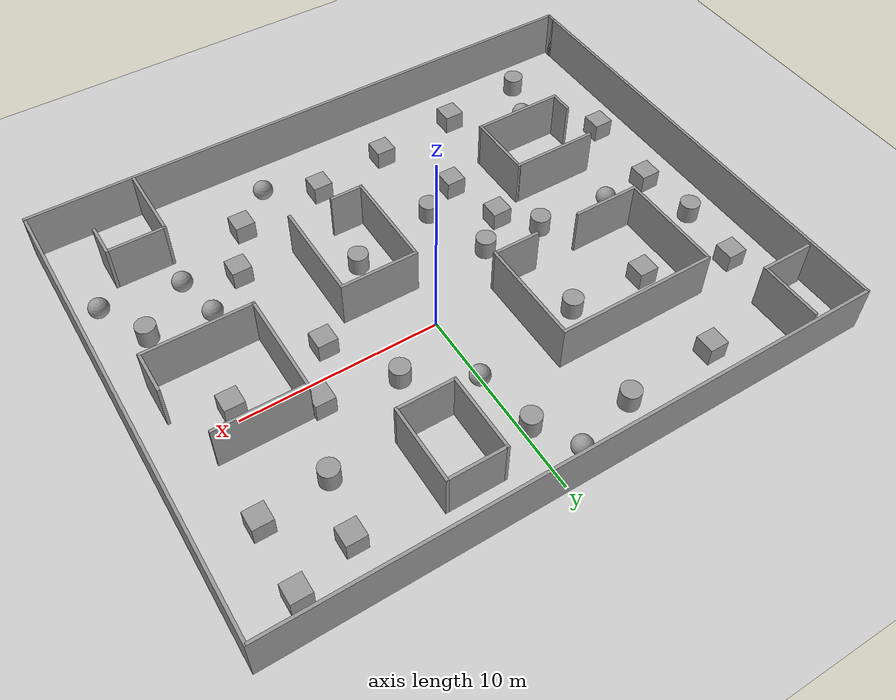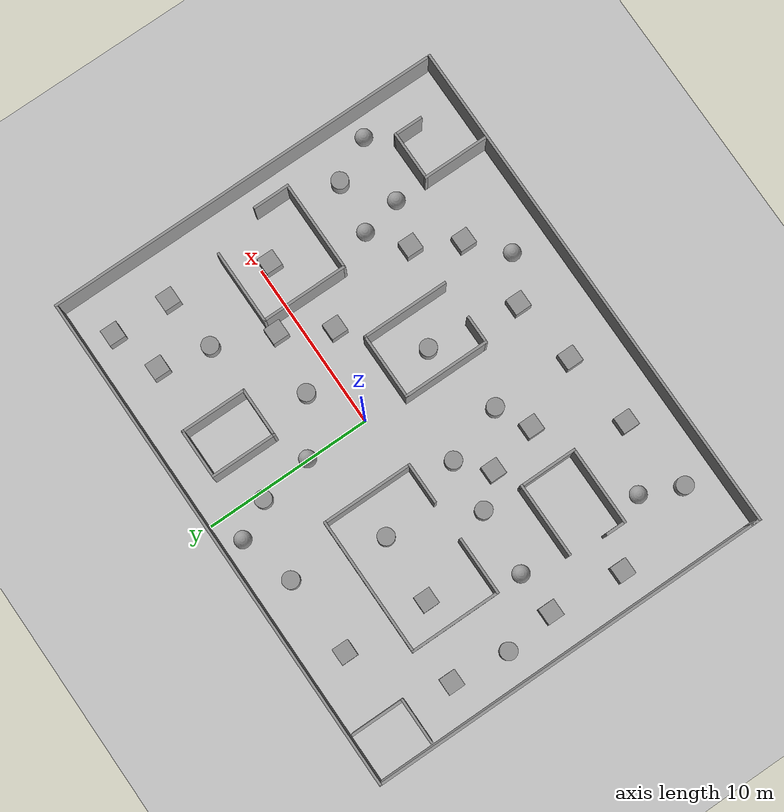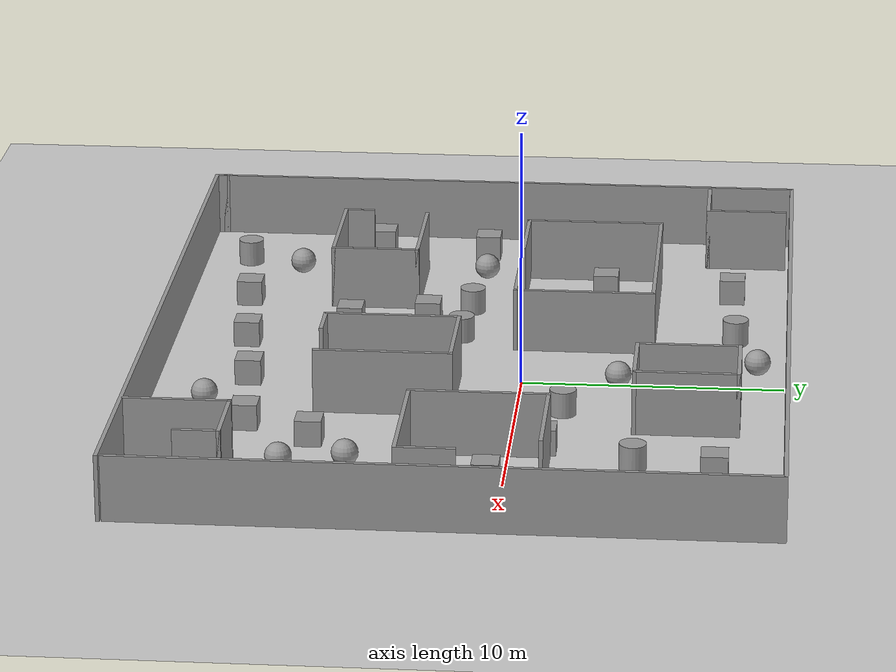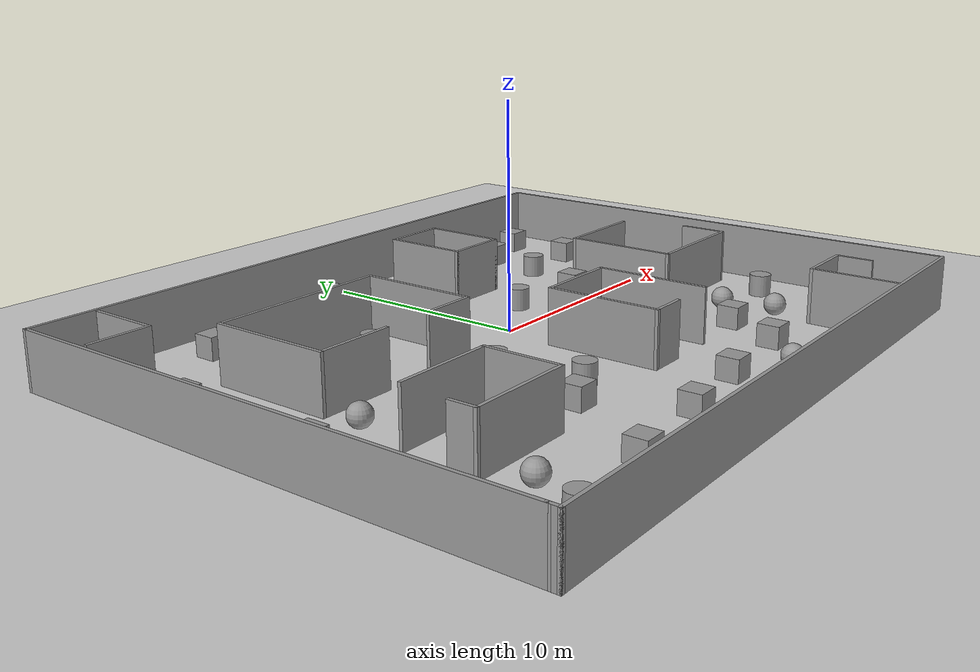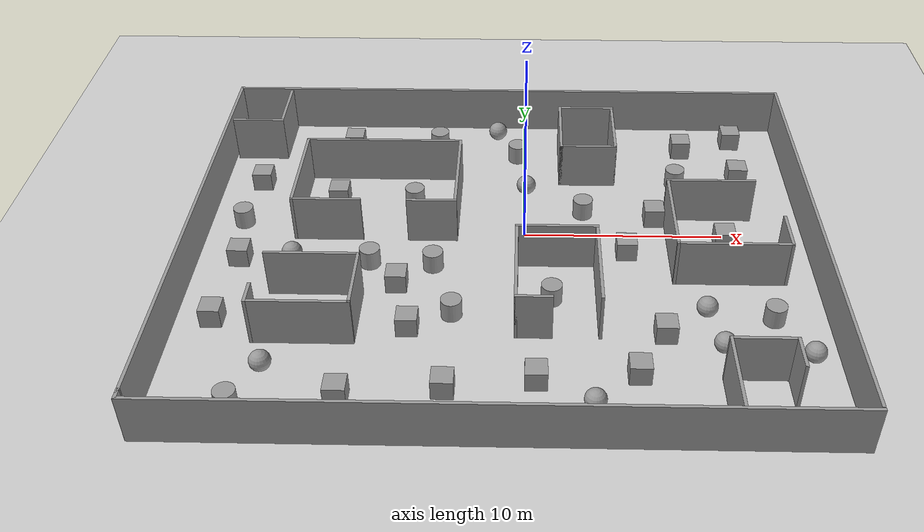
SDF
<sdf version="1.6">
 <world name="default">
  <light name="sun" type="directional">
   <pose>0 0 10 0 -0 0</pose>
   <diffuse>0.8 0.8 0.8 1</diffuse>
   <specular>0.2 0.2 0.2 1</specular>
   <attenuation>
    <range>1000</range>
    <constant>0.9</constant>
    <linear>0.01</linear>
    <quadratic>0.001</quadratic>
   </attenuation>
   <direction>-0.5 0.1 -0.9</direction>
  </light>
  <model name="ground_plane">
   <static>1</static>
   <link name="link">
    <collision name="collision">
     <geometry><plane><normal>0 0 1</normal><size>100 100</size></plane></geometry>
     <surface>
      <contact><collide_bitmask>65535</collide_bitmask></contact>
      <friction><ode><mu>100</mu><mu2>50</mu2></ode></friction>
     </surface>
    </collision>
    <visual name="visual">
     <cast_shadows>0</cast_shadows>
     <geometry><plane><normal>0 0 1</normal><size>100 100</size></plane></geometry>
     <material>
      <script><uri>file://media/materials/scripts/gazebo.material</uri><name>Gazebo/Grey</name></script>
     </material>
    </visual>
   </link>
  </model>
  <gravity>0 0 -9.8</gravity>
  <magnetic_field>6e-06 2.3e-05 -4.2e-05</magnetic_field>
  <atmosphere type="adiabatic"/>
  <physics name="default_physics" default="0" type="ode">
   <max_step_size>0.01</max_step_size>
   <real_time_factor>1</real_time_factor>
   <real_time_update_rate>100</real_time_update_rate>
  </physics>
  <scene><ambient>0.4 0.4 0.4 1</ambient><background>0.7 0.7 0.7 1</background><shadows>1</shadows></scene>
  <audio><device>default</device></audio>
  <spherical_coordinates>
   <surface_model>EARTH_WGS84</surface_model>
   <latitude_deg>0</latitude_deg>
   <longitude_deg>0</longitude_deg>
   <elevation>0</elevation>
   <heading_deg>0</heading_deg>
  </spherical_coordinates>
  <model name="uNSTRUCTED">
   <pose>-1.02886 -1.89043 0 0 -0 0</pose>
   <link name="Wall_10">
    <collision name="Wall_10_Collision">
     <geometry><box><size>0.5 0.15 2.5</size></box></geometry>
     <pose>0 0 1.25 0 -0 0</pose>
    </collision>
    <visual name="Wall_10_Visual">
     <pose>0 0 1.25 0 -0 0</pose>
     <geometry><box><size>0.5 0.15 2.5</size></box></geometry>
     <material>
      <script><uri>file://media/materials/scripts/gazebo.material</uri><name>Gazebo/Grey</name></script>
      <ambient>1 1 1 1</ambient>
     </material>
     <meta><layer>0</layer></meta>
    </visual>
    <pose>-15.175 -11.85 0 0 -0 -1.5708</pose>
   </link>
   <link name="Wall_11">
    <collision name="Wall_11_Collision">
     <geometry><box><size>30.5 0.15 2.5</size></box></geometry>
     <pose>0 0 1.25 0 -0 0</pose>
    </collision>
    <visual name="Wall_11_Visual">
     <pose>0 0 1.25 0 -0 0</pose>
     <geometry><box><size>30.5 0.15 2.5</size></box></geometry>
     <material>
      <script><uri>file://media/materials/scripts/gazebo.material</uri><name>Gazebo/Grey</name></script>
      <ambient>1 1 1 1</ambient>
     </material>
     <meta><layer>0</layer></meta>
    </visual>
    <pose>0 -12.025 0 0 -0 0</pose>
   </link>
   <link name="Wall_13">
    <collision name="Wall_13_Collision">
     <geometry><box><size>3.5 0.15 2.5</size></box></geometry>
     <pose>0 0 1.25 0 -0 0</pose>
    </collision>
    <visual name="Wall_13_Visual">
     <pose>0 0 1.25 0 -0 0</pose>
     <geometry><box><size>3.5 0.15 2.5</size></box></geometry>
     <material>
      <script><uri>file://media/materials/scripts/gazebo.material</uri><name>Gazebo/Grey</name></script>
      <ambient>1 1 1 1</ambient>
     </material>
     <meta><layer>0</layer></meta>
    </visual>
    <pose>-8.84715 1.42509 0 0 -0 3.14159</pose>
   </link>
   <link name="Wall_14">
    <collision name="Wall_14_Collision">
     <geometry><box><size>5.5 0.15 2.5</size></box></geometry>
     <pose>0 0 1.25 0 -0 0</pose>
    </collision>
    <visual name="Wall_14_Visual">
     <pose>0 0 1.25 0 -0 0</pose>
     <geometry><box><size>5.5 0.15 2.5</size></box></geometry>
     <material>
      <script><uri>file://media/materials/scripts/gazebo.material</uri><name>Gazebo/Grey</name></script>
      <ambient>1 1 1 1</ambient>
     </material>
     <meta><layer>0</layer></meta>
    </visual>
    <pose>-10.5222 4.10009 0 0 -0 1.5708</pose>
   </link>
   <link name="Wall_15">
    <collision name="Wall_15_Collision">
     <geometry><box><size>8.25 0.15 2.5</size></box></geometry>
     <pose>0 0 1.25 0 -0 0</pose>
    </collision>
    <visual name="Wall_15_Visual">
     <pose>0 0 1.25 0 -0 0</pose>
     <geometry><box><size>8.25 0.15 2.5</size></box></geometry>
     <material>
      <script><uri>file://media/materials/scripts/gazebo.material</uri><name>Gazebo/Grey</name></script>
      <ambient>1 1 1 1</ambient>
     </material>
     <meta><layer>0</layer></meta>
    </visual>
    <pose>-6.47215 6.77509 0 0 -0 0</pose>
   </link>
   <link name="Wall_16">
    <collision name="Wall_16_Collision">
     <geometry><box><size>5.5 0.15 2.5</size></box></geometry>
     <pose>0 0 1.25 0 -0 0</pose>
    </collision>
    <visual name="Wall_16_Visual">
     <pose>0 0 1.25 0 -0 0</pose>
     <geometry><box><size>5.5 0.15 2.5</size></box></geometry>
     <material>
      <script><uri>file://media/materials/scripts/gazebo.material</uri><name>Gazebo/Grey</name></script>
      <ambient>1 1 1 1</ambient>
     </material>
     <meta><layer>0</layer></meta>
    </visual>
    <pose>-2.42215 4.10009 0 0 -0 -1.5708</pose>
   </link>
   <link name="Wall_17">
    <collision name="Wall_17_Collision">
     <geometry><box><size>2.5 0.15 2.5</size></box></geometry>
     <pose>0 0 1.25 0 -0 0</pose>
    </collision>
    <visual name="Wall_17_Visual">
     <pose>0 0 1.25 0 -0 0</pose>
     <geometry><box><size>2.5 0.15 2.5</size></box></geometry>
     <material>
      <script><uri>file://media/materials/scripts/gazebo.material</uri><name>Gazebo/Grey</name></script>
      <ambient>1 1 1 1</ambient>
     </material>
     <meta><layer>0</layer></meta>
    </visual>
    <pose>-3.59715 1.42509 0 0 -0 3.14159</pose>
   </link>
   <link name="Wall_19">
    <collision name="Wall_19_Collision">
     <geometry><box><size>4 0.15 2.5</size></box></geometry>
     <pose>0 0 1.25 0 -0 0</pose>
    </collision>
    <visual name="Wall_19_Visual">
     <pose>0 0 1.25 0 -0 0</pose>
     <geometry><box><size>4 0.15 2.5</size></box></geometry>
     <material>
      <script><uri>file://media/materials/scripts/gazebo.material</uri><name>Gazebo/Grey</name></script>
      <ambient>1 1 1 1</ambient>
     </material>
     <meta><layer>0</layer></meta>
    </visual>
    <pose>2.92262 8.30571 0 0 -0 1.5708</pose>
   </link>
   <link name="Wall_20">
    <collision name="Wall_20_Collision">
     <geometry><box><size>3 0.15 2.5</size></box></geometry>
     <pose>0 0 1.25 0 -0 0</pose>
    </collision>
    <visual name="Wall_20_Visual">
     <pose>0 0 1.25 0 -0 0</pose>
     <geometry><box><size>3 0.15 2.5</size></box></geometry>
     <material>
      <script><uri>file://media/materials/scripts/gazebo.material</uri><name>Gazebo/Grey</name></script>
      <ambient>1 1 1 1</ambient>
     </material>
     <meta><layer>0</layer></meta>
    </visual>
    <pose>4.34762 10.2307 0 0 -0 0</pose>
   </link>
   <link name="Wall_21">
    <collision name="Wall_21_Collision">
     <geometry><box><size>4 0.15 2.5</size></box></geometry>
     <pose>0 0 1.25 0 -0 0</pose>
    </collision>
    <visual name="Wall_21_Visual">
     <pose>0 0 1.25 0 -0 0</pose>
     <geometry><box><size>4 0.15 2.5</size></box></geometry>
     <material>
      <script><uri>file://media/materials/scripts/gazebo.material</uri><name>Gazebo/Grey</name></script>
      <ambient>1 1 1 1</ambient>
     </material>
     <meta><layer>0</layer></meta>
    </visual>
    <pose>5.77262 8.30571 0 0 -0 -1.5708</pose>
   </link>
   <link name="Wall_23">
    <collision name="Wall_23_Collision">
     <geometry><box><size>3 0.15 2.5</size></box></geometry>
     <pose>0 0 1.25 0 -0 0</pose>
    </collision>
    <visual name="Wall_23_Visual">
     <pose>0 0 1.25 0 -0 0</pose>
     <geometry><box><size>3 0.15 2.5</size></box></geometry>
     <material>
      <script><uri>file://media/materials/scripts/gazebo.material</uri><name>Gazebo/Grey</name></script>
      <ambient>1 1 1 1</ambient>
     </material>
     <meta><layer>0</layer></meta>
    </visual>
    <pose>4.34762 6.38071 0 0 -0 0</pose>
   </link>
   <link name="Wall_25">
    <collision name="Wall_25_Collision">
     <geometry><box><size>4.5 0.15 2.5</size></box></geometry>
     <pose>0 0 1.25 0 -0 0</pose>
    </collision>
    <visual name="Wall_25_Visual">
     <pose>0 0 1.25 0 -0 0</pose>
     <geometry><box><size>4.5 0.15 2.5</size></box></geometry>
     <material>
      <script><uri>file://media/materials/scripts/gazebo.material</uri><name>Gazebo/Grey</name></script>
      <ambient>1 1 1 1</ambient>
     </material>
     <meta><layer>0</layer></meta>
    </visual>
    <pose>-8.85152 -2.79636 0 0 -0 0</pose>
   </link>
   <link name="Wall_26">
    <collision name="Wall_26_Collision">
     <geometry><box><size>3.5 0.15 2.5</size></box></geometry>
     <pose>0 0 1.25 0 -0 0</pose>
    </collision>
    <visual name="Wall_26_Visual">
     <pose>0 0 1.25 0 -0 0</pose>
     <geometry><box><size>3.5 0.15 2.5</size></box></geometry>
     <material>
      <script><uri>file://media/materials/scripts/gazebo.material</uri><name>Gazebo/Grey</name></script>
      <ambient>1 1 1 1</ambient>
     </material>
     <meta><layer>0</layer></meta>
    </visual>
    <pose>-6.67652 -4.47136 0 0 -0 -1.5708</pose>
   </link>
   <link name="Wall_27">
    <collision name="Wall_27_Collision">
     <geometry><box><size>4.75 0.15 2.5</size></box></geometry>
     <pose>0 0 1.25 0 -0 0</pose>
    </collision>
    <visual name="Wall_27_Visual">
     <pose>0 0 1.25 0 -0 0</pose>
     <geometry><box><size>4.75 0.15 2.5</size></box></geometry>
     <material>
      <script><uri>file://media/materials/scripts/gazebo.material</uri><name>Gazebo/Grey</name></script>
      <ambient>1 1 1 1</ambient>
     </material>
     <meta><layer>0</layer></meta>
    </visual>
    <pose>-8.97652 -6.14636 0 0 -0 3.14159</pose>
   </link>
   <link name="Wall_28">
    <collision name="Wall_28_Collision">
     <geometry><box><size>1.25 0.15 2.5</size></box></geometry>
     <pose>0 0 1.25 0 -0 0</pose>
    </collision>
    <visual name="Wall_28_Visual">
     <pose>0 0 1.25 0 -0 0</pose>
     <geometry><box><size>1.25 0.15 2.5</size></box></geometry>
     <material>
      <script><uri>file://media/materials/scripts/gazebo.material</uri><name>Gazebo/Grey</name></script>
      <ambient>1 1 1 1</ambient>
     </material>
     <meta><layer>0</layer></meta>
    </visual>
    <pose>-11.2765 -5.59636 0 0 -0 1.5708</pose>
   </link>
   <link name="Wall_3">
    <collision name="Wall_3_Collision">
     <geometry><box><size>30.5 0.15 2.5</size></box></geometry>
     <pose>0 0 1.25 0 -0 0</pose>
    </collision>
    <visual name="Wall_3_Visual">
     <pose>0 0 1.25 0 -0 0</pose>
     <geometry><box><size>30.5 0.15 2.5</size></box></geometry>
     <material>
      <script><uri>file://media/materials/scripts/gazebo.material</uri><name>Gazebo/Grey</name></script>
      <ambient>1 1 1 1</ambient>
     </material>
     <meta><layer>0</layer></meta>
    </visual>
    <pose>0 12.025 0 0 -0 0</pose>
   </link>
   <link name="Wall_30">
    <collision name="Wall_30_Collision">
     <geometry><box><size>2.75 0.15 2.5</size></box></geometry>
     <pose>0 0 1.25 0 -0 0</pose>
    </collision>
    <visual name="Wall_30_Visual">
     <pose>0 0 1.25 0 -0 0</pose>
     <geometry><box><size>2.75 0.15 2.5</size></box></geometry>
     <material>
      <script><uri>file://media/materials/scripts/gazebo.material</uri><name>Gazebo/Grey</name></script>
      <ambient>1 1 1 1</ambient>
     </material>
     <meta><layer>0</layer></meta>
    </visual>
    <pose>-13.5809 8.64439 0 0 -0 0</pose>
   </link>
   <link name="Wall_31">
    <collision name="Wall_31_Collision">
     <geometry><box><size>3.25 0.15 2.5</size></box></geometry>
     <pose>0 0 1.25 0 -0 0</pose>
    </collision>
    <visual name="Wall_31_Visual">
     <pose>0 0 1.25 0 -0 0</pose>
     <geometry><box><size>3.25 0.15 2.5</size></box></geometry>
     <material>
      <script><uri>file://media/materials/scripts/gazebo.material</uri><name>Gazebo/Grey</name></script>
      <ambient>1 1 1 1</ambient>
     </material>
     <meta><layer>0</layer></meta>
    </visual>
    <pose>-12.2809 10.1944 0 0 -0 1.5708</pose>
   </link>
   <link name="Wall_33">
    <collision name="Wall_33_Collision">
     <geometry><box><size>5.25 0.15 2.5</size></box></geometry>
     <pose>0 0 1.25 0 -0 0</pose>
    </collision>
    <visual name="Wall_33_Visual">
     <pose>0 0 1.25 0 -0 0</pose>
     <geometry><box><size>5.25 0.15 2.5</size></box></geometry>
     <material>
      <script><uri>file://media/materials/scripts/gazebo.material</uri><name>Gazebo/Grey</name></script>
      <ambient>1 1 1 1</ambient>
     </material>
     <meta><layer>0</layer></meta>
    </visual>
    <pose>8.24532 0.832868 0 0 -0 -1.5708</pose>
   </link>
   <link name="Wall_34">
    <collision name="Wall_34_Collision">
     <geometry><box><size>5.5 0.15 2.5</size></box></geometry>
     <pose>0 0 1.25 0 -0 0</pose>
    </collision>
    <visual name="Wall_34_Visual">
     <pose>0 0 1.25 0 -0 0</pose>
     <geometry><box><size>5.5 0.15 2.5</size></box></geometry>
     <material>
      <script><uri>file://media/materials/scripts/gazebo.material</uri><name>Gazebo/Grey</name></script>
      <ambient>1 1 1 1</ambient>
     </material>
     <meta><layer>0</layer></meta>
    </visual>
    <pose>10.9203 -1.71713 0 0 -0 0</pose>
   </link>
   <link name="Wall_35">
    <collision name="Wall_35_Collision">
     <geometry><box><size>2.25 0.15 2.5</size></box></geometry>
     <pose>0 0 1.25 0 -0 0</pose>
    </collision>
    <visual name="Wall_35_Visual">
     <pose>0 0 1.25 0 -0 0</pose>
     <geometry><box><size>2.25 0.15 2.5</size></box></geometry>
     <material>
      <script><uri>file://media/materials/scripts/gazebo.material</uri><name>Gazebo/Grey</name></script>
      <ambient>1 1 1 1</ambient>
     </material>
     <meta><layer>0</layer></meta>
    </visual>
    <pose>13.5953 -0.667132 0 0 -0 1.5708</pose>
   </link>
   <link name="Wall_37">
    <collision name="Wall_37_Collision">
     <geometry><box><size>4.5 0.15 2.5</size></box></geometry>
     <pose>0 0 1.25 0 -0 0</pose>
    </collision>
    <visual name="Wall_37_Visual">
     <pose>0 0 1.25 0 -0 0</pose>
     <geometry><box><size>4.5 0.15 2.5</size></box></geometry>
     <material>
      <script><uri>file://media/materials/scripts/gazebo.material</uri><name>Gazebo/Grey</name></script>
      <ambient>1 1 1 1</ambient>
     </material>
     <meta><layer>0</layer></meta>
    </visual>
    <pose>10.4203 3.38287 0 0 -0 0</pose>
   </link>
   <link name="Wall_39">
    <collision name="Wall_39_Collision">
     <geometry><box><size>1.75 0.15 2.5</size></box></geometry>
     <pose>0 0 1.25 0 -0 0</pose>
    </collision>
    <visual name="Wall_39_Visual">
     <pose>0 0 1.25 0 -0 0</pose>
     <geometry><box><size>1.75 0.15 2.5</size></box></geometry>
     <material>
      <script><uri>file://media/materials/scripts/gazebo.material</uri><name>Gazebo/Grey</name></script>
      <ambient>1 1 1 1</ambient>
     </material>
     <meta><layer>0</layer></meta>
    </visual>
    <pose>1.44964 -5.61066 0 0 -0 3.14159</pose>
   </link>
   <link name="Wall_4">
    <collision name="Wall_4_Collision">
     <geometry><box><size>24 0.15 2.5</size></box></geometry>
     <pose>0 0 1.25 0 -0 0</pose>
    </collision>
    <visual name="Wall_4_Visual">
     <pose>0 0 1.25 0 -0 0</pose>
     <geometry><box><size>24 0.15 2.5</size></box></geometry>
     <material>
      <script><uri>file://media/materials/scripts/gazebo.material</uri><name>Gazebo/Grey</name></script>
      <ambient>1 1 1 1</ambient>
     </material>
     <meta><layer>0</layer></meta>
    </visual>
    <pose>15.175 0.099999 0 0 -0 -1.5708</pose>
   </link>
   <link name="Wall_40">
    <collision name="Wall_40_Collision">
     <geometry><box><size>5.25 0.15 2.5</size></box></geometry>
     <pose>0 0 1.25 0 -0 0</pose>
    </collision>
    <visual name="Wall_40_Visual">
     <pose>0 0 1.25 0 -0 0</pose>
     <geometry><box><size>5.25 0.15 2.5</size></box></geometry>
     <material>
      <script><uri>file://media/materials/scripts/gazebo.material</uri><name>Gazebo/Grey</name></script>
      <ambient>1 1 1 1</ambient>
     </material>
     <meta><layer>0</layer></meta>
    </visual>
    <pose>0.649638 -3.06066 0 0 -0 1.5708</pose>
   </link>
   <link name="Wall_41">
    <collision name="Wall_41_Collision">
     <geometry><box><size>4 0.15 2.5</size></box></geometry>
     <pose>0 0 1.25 0 -0 0</pose>
    </collision>
    <visual name="Wall_41_Visual">
     <pose>0 0 1.25 0 -0 0</pose>
     <geometry><box><size>4 0.15 2.5</size></box></geometry>
     <material>
      <script><uri>file://media/materials/scripts/gazebo.material</uri><name>Gazebo/Grey</name></script>
      <ambient>1 1 1 1</ambient>
     </material>
     <meta><layer>0</layer></meta>
    </visual>
    <pose>2.57464 -0.510659 0 0 -0 0</pose>
   </link>
   <link name="Wall_42">
    <collision name="Wall_42_Collision">
     <geometry><box><size>5.25 0.15 2.5</size></box></geometry>
     <pose>0 0 1.25 0 -0 0</pose>
    </collision>
    <visual name="Wall_42_Visual">
     <pose>0 0 1.25 0 -0 0</pose>
     <geometry><box><size>5.25 0.15 2.5</size></box></geometry>
     <material>
      <script><uri>file://media/materials/scripts/gazebo.material</uri><name>Gazebo/Grey</name></script>
      <ambient>1 1 1 1</ambient>
     </material>
     <meta><layer>0</layer></meta>
    </visual>
    <pose>4.49964 -3.06066 0 0 -0 -1.5708</pose>
   </link>
   <link name="Wall_44">
    <collision name="Wall_44_Collision">
     <geometry><box><size>4 0.15 2.5</size></box></geometry>
     <pose>0 0 1.25 0 -0 0</pose>
    </collision>
    <visual name="Wall_44_Visual">
     <pose>0 0 1.25 0 -0 0</pose>
     <geometry><box><size>4 0.15 2.5</size></box></geometry>
     <material>
      <script><uri>file://media/materials/scripts/gazebo.material</uri><name>Gazebo/Grey</name></script>
      <ambient>1 1 1 1</ambient>
     </material>
     <meta><layer>0</layer></meta>
    </visual>
    <pose>9.77483 -9.98725 0 0 -0 1.5708</pose>
   </link>
   <link name="Wall_45">
    <collision name="Wall_45_Collision">
     <geometry><box><size>3 0.15 2.5</size></box></geometry>
     <pose>0 0 1.25 0 -0 0</pose>
    </collision>
    <visual name="Wall_45_Visual">
     <pose>0 0 1.25 0 -0 0</pose>
     <geometry><box><size>3 0.15 2.5</size></box></geometry>
     <material>
      <script><uri>file://media/materials/scripts/gazebo.material</uri><name>Gazebo/Grey</name></script>
      <ambient>1 1 1 1</ambient>
     </material>
     <meta><layer>0</layer></meta>
    </visual>
    <pose>11.1998 -8.06225 0 0 -0 0</pose>
   </link>
   <link name="Wall_46">
    <collision name="Wall_46_Collision">
     <geometry><box><size>1.75 0.15 2.5</size></box></geometry>
     <pose>0 0 1.25 0 -0 0</pose>
    </collision>
    <visual name="Wall_46_Visual">
     <pose>0 0 1.25 0 -0 0</pose>
     <geometry><box><size>1.75 0.15 2.5</size></box></geometry>
     <material>
      <script><uri>file://media/materials/scripts/gazebo.material</uri><name>Gazebo/Grey</name></script>
      <ambient>1 1 1 1</ambient>
     </material>
     <meta><layer>0</layer></meta>
    </visual>
    <pose>12.6248 -8.86225 0 0 -0 -1.5708</pose>
   </link>
   <link name="Wall_8">
    <collision name="Wall_8_Collision">
     <geometry><box><size>23.75 0.15 2.5</size></box></geometry>
     <pose>0 0 1.25 0 -0 0</pose>
    </collision>
    <visual name="Wall_8_Visual">
     <pose>0 0 1.25 0 -0 0</pose>
     <geometry><box><size>23.75 0.15 2.5</size></box></geometry>
     <material>
      <script><uri>file://media/materials/scripts/gazebo.material</uri><name>Gazebo/Grey</name></script>
      <ambient>1 1 1 1</ambient>
     </material>
     <meta><layer>0</layer></meta>
    </visual>
    <pose>-15.175 0.224999 0 0 -0 -1.5708</pose>
   </link>
   <link name="Wall_9">
    <collision name="Wall_9_Collision">
     <geometry><box><size>0.25 0.15 2.5</size></box></geometry>
     <pose>0 0 1.25 0 -0 0</pose>
    </collision>
    <visual name="Wall_9_Visual">
     <pose>0 0 1.25 0 -0 0</pose>
     <geometry><box><size>0.25 0.15 2.5</size></box></geometry>
     <material>
      <script><uri>file://media/materials/scripts/gazebo.material</uri><name>Gazebo/Grey</name></script>
      <ambient>1 1 1 1</ambient>
     </material>
     <meta><layer>0</layer></meta>
    </visual>
    <pose>-15.175 -11.625 0 0 -0 -1.5708</pose>
   </link>
   <static>1</static>
  </model>
  <model name="unit_box">
   <pose>-9.74154 2.76926 0.499995 -1e-05 -0 -0</pose>
   <link name="link">
    <inertial>
     <mass>1</mass>
     <inertia>
      <ixx>0.166667</ixx>
      <ixy>0</ixy>
      <ixz>0</ixz>
      <iyy>0.166667</iyy>
      <iyz>0</iyz>
      <izz>0.166667</izz>
     </inertia>
    </inertial>
    <collision name="collision"><geometry><box><size>1 1 1</size></box></geometry></collision>
    <visual name="visual">
     <geometry><box><size>1 1 1</size></box></geometry>
     <material>
      <script><name>Gazebo/Grey</name><uri>file://media/materials/scripts/gazebo.material</uri></script>
     </material>
    </visual>
   </link>
  </model>
  <model name="unit_cylinder">
   <pose>-5.7688 2.62211 0.499997 4e-06 3e-06 -0</pose>
   <link name="link">
    <inertial>
     <mass>1</mass>
     <inertia><ixx>0.145833</ixx><ixy>0</ixy><ixz>0</ixz><iyy>0.145833</iyy><iyz>0</iyz><izz>0.125</izz></inertia>
    </inertial>
    <collision name="collision">
     <geometry><cylinder><radius>0.5</radius><length>1</length></cylinder></geometry>
    </collision>
    <visual name="visual">
     <geometry><cylinder><radius>0.5</radius><length>1</length></cylinder></geometry>
     <material>
      <script><name>Gazebo/Grey</name><uri>file://media/materials/scripts/gazebo.material</uri></script>
     </material>
    </visual>
   </link>
  </model>
  <model name="unit_box_0">
   <pose>-14.0333 4.10663 0.499995 -1e-05 -0 -0</pose>
   <link name="link">
    <inertial>
     <mass>1</mass>
     <inertia>
      <ixx>0.166667</ixx>
      <ixy>0</ixy>
      <ixz>0</ixz>
      <iyy>0.166667</iyy>
      <iyz>0</iyz>
      <izz>0.166667</izz>
     </inertia>
    </inertial>
    <collision name="collision"><geometry><box><size>1 1 1</size></box></geometry></collision>
    <visual name="visual">
     <geometry><box><size>1 1 1</size></box></geometry>
     <material>
      <script><name>Gazebo/Grey</name><uri>file://media/materials/scripts/gazebo.material</uri></script>
     </material>
    </visual>
   </link>
  </model>
  <model name="unit_cylinder_0">
   <pose>-14.3994 0.724442 0.499994 -4e-06 -3e-06 -0</pose>
   <link name="link">
    <inertial>
     <mass>1</mass>
     <inertia><ixx>0.145833</ixx><ixy>0</ixy><ixz>0</ixz><iyy>0.145833</iyy><iyz>0</iyz><izz>0.125</izz></inertia>
    </inertial>
    <collision name="collision">
     <geometry><cylinder><radius>0.5</radius><length>1</length></cylinder></geometry>
    </collision>
    <visual name="visual">
     <geometry><cylinder><radius>0.5</radius><length>1</length></cylinder></geometry>
     <material>
      <script><name>Gazebo/Grey</name><uri>file://media/materials/scripts/gazebo.material</uri></script>
     </material>
    </visual>
   </link>
  </model>
  <model name="unit_box_1">
   <pose>-13.9883 -2.29121 0.499995 -1e-05 -0 -0</pose>
   <link name="link">
    <inertial>
     <mass>1</mass>
     <inertia>
      <ixx>0.166667</ixx>
      <ixy>0</ixy>
      <ixz>0</ixz>
      <iyy>0.166667</iyy>
      <iyz>0</iyz>
      <izz>0.166667</izz>
     </inertia>
    </inertial>
    <collision name="collision"><geometry><box><size>1 1 1</size></box></geometry></collision>
    <visual name="visual">
     <geometry><box><size>1 1 1</size></box></geometry>
     <material>
      <script><name>Gazebo/Grey</name><uri>file://media/materials/scripts/gazebo.material</uri></script>
     </material>
    </visual>
   </link>
  </model>
  <model name="unit_sphere">
   <pose>-11.4334 -2.16065 0.5 0 -0 0</pose>
   <link name="link">
    <inertial>
     <mass>1</mass>
     <inertia><ixx>0.1</ixx><ixy>0</ixy><ixz>0</ixz><iyy>0.1</iyy><iyz>0</iyz><izz>0.1</izz></inertia>
    </inertial>
    <collision name="collision"><geometry><sphere><radius>0.5</radius></sphere></geometry></collision>
    <visual name="visual">
     <geometry><sphere><radius>0.5</radius></sphere></geometry>
     <material>
      <script><name>Gazebo/Grey</name><uri>file://media/materials/scripts/gazebo.material</uri></script>
     </material>
    </visual>
   </link>
  </model>
  <model name="unit_cylinder_1">
   <pose>-7.55518 -2.44463 0.499994 -4e-06 -4e-06 -0</pose>
   <link name="link">
    <inertial>
     <mass>1</mass>
     <inertia><ixx>0.145833</ixx><ixy>0</ixy><ixz>0</ixz><iyy>0.145833</iyy><iyz>0</iyz><izz>0.125</izz></inertia>
    </inertial>
    <collision name="collision">
     <geometry><cylinder><radius>0.5</radius><length>1</length></cylinder></geometry>
    </collision>
    <visual name="visual">
     <geometry><cylinder><radius>0.5</radius><length>1</length></cylinder></geometry>
     <material>
      <script><name>Gazebo/Grey</name><uri>file://media/materials/scripts/gazebo.material</uri></script>
     </material>
    </visual>
   </link>
  </model>
  <model name="unit_cylinder_2">
   <pose>-4.8017 8.06403 0.499997 4e-06 4e-06 -0</pose>
   <link name="link">
    <inertial>
     <mass>1</mass>
     <inertia><ixx>0.145833</ixx><ixy>0</ixy><ixz>0</ixz><iyy>0.145833</iyy><iyz>0</iyz><izz>0.125</izz></inertia>
    </inertial>
    <collision name="collision">
     <geometry><cylinder><radius>0.5</radius><length>1</length></cylinder></geometry>
    </collision>
    <visual name="visual">
     <geometry><cylinder><radius>0.5</radius><length>1</length></cylinder></geometry>
     <material>
      <script><name>Gazebo/Grey</name><uri>file://media/materials/scripts/gazebo.material</uri></script>
     </material>
    </visual>
   </link>
  </model>
  <model name="unit_box_2">
   <pose>-9.55526 7.84792 0.499995 -1e-05 -0 -0</pose>
   <link name="link">
    <inertial>
     <mass>1</mass>
     <inertia>
      <ixx>0.166667</ixx>
      <ixy>0</ixy>
      <ixz>0</ixz>
      <iyy>0.166667</iyy>
      <iyz>0</iyz>
      <izz>0.166667</izz>
     </inertia>
    </inertial>
    <collision name="collision"><geometry><box><size>1 1 1</size></box></geometry></collision>
    <visual name="visual">
     <geometry><box><size>1 1 1</size></box></geometry>
     <material>
      <script><name>Gazebo/Grey</name><uri>file://media/materials/scripts/gazebo.material</uri></script>
     </material>
    </visual>
   </link>
  </model>
  <model name="unit_cylinder_3">
   <pose>-0.41743 6.86262 0.499998 3e-06 4e-06 -0</pose>
   <link name="link">
    <inertial>
     <mass>1</mass>
     <inertia><ixx>0.145833</ixx><ixy>0</ixy><ixz>0</ixz><iyy>0.145833</iyy><iyz>0</iyz><izz>0.125</izz></inertia>
    </inertial>
    <collision name="collision">
     <geometry><cylinder><radius>0.5</radius><length>1</length></cylinder></geometry>
    </collision>
    <visual name="visual">
     <geometry><cylinder><radius>0.5</radius><length>1</length></cylinder></geometry>
     <material>
      <script><name>Gazebo/Grey</name><uri>file://media/materials/scripts/gazebo.material</uri></script>
     </material>
    </visual>
   </link>
  </model>
  <model name="unit_sphere_0">
   <pose>-1.55556 8.97205 0.5 0 -0 0</pose>
   <link name="link">
    <inertial>
     <mass>1</mass>
     <inertia><ixx>0.1</ixx><ixy>0</ixy><ixz>0</ixz><iyy>0.1</iyy><iyz>0</iyz><izz>0.1</izz></inertia>
    </inertial>
    <collision name="collision"><geometry><sphere><radius>0.5</radius></sphere></geometry></collision>
    <visual name="visual">
     <geometry><sphere><radius>0.5</radius></sphere></geometry>
     <material>
      <script><name>Gazebo/Grey</name><uri>file://media/materials/scripts/gazebo.material</uri></script>
     </material>
    </visual>
   </link>
  </model>
  <model name="unit_box_3">
   <pose>11.5154 8.52555 0.499995 0 1e-05 0</pose>
   <link name="link">
    <inertial>
     <mass>1</mass>
     <inertia>
      <ixx>0.166667</ixx>
      <ixy>0</ixy>
      <ixz>0</ixz>
      <iyy>0.166667</iyy>
      <iyz>0</iyz>
      <izz>0.166667</izz>
     </inertia>
    </inertial>
    <collision name="collision"><geometry><box><size>1 1 1</size></box></geometry></collision>
    <visual name="visual">
     <geometry><box><size>1 1 1</size></box></geometry>
     <material>
      <script><name>Gazebo/Grey</name><uri>file://media/materials/scripts/gazebo.material</uri></script>
     </material>
    </visual>
   </link>
  </model>
  <model name="unit_box_4">
   <pose>8.63246 7.5713 0.499995 -1e-05 -0 -0</pose>
   <link name="link">
    <inertial>
     <mass>1</mass>
     <inertia>
      <ixx>0.166667</ixx>
      <ixy>0</ixy>
      <ixz>0</ixz>
      <iyy>0.166667</iyy>
      <iyz>0</iyz>
      <izz>0.166667</izz>
     </inertia>
    </inertial>
    <collision name="collision"><geometry><box><size>1 1 1</size></box></geometry></collision>
    <visual name="visual">
     <geometry><box><size>1 1 1</size></box></geometry>
     <material>
      <script><name>Gazebo/Grey</name><uri>file://media/materials/scripts/gazebo.material</uri></script>
     </material>
    </visual>
   </link>
  </model>
  <model name="unit_box_5">
   <pose>11.411 5.04689 0.499995 0 1e-05 0</pose>
   <link name="link">
    <inertial>
     <mass>1</mass>
     <inertia>
      <ixx>0.166667</ixx>
      <ixy>0</ixy>
      <ixz>0</ixz>
      <iyy>0.166667</iyy>
      <iyz>0</iyz>
      <izz>0.166667</izz>
     </inertia>
    </inertial>
    <collision name="collision"><geometry><box><size>1 1 1</size></box></geometry></collision>
    <visual name="visual">
     <geometry><box><size>1 1 1</size></box></geometry>
     <material>
      <script><name>Gazebo/Grey</name><uri>file://media/materials/scripts/gazebo.material</uri></script>
     </material>
    </visual>
   </link>
  </model>
  <model name="unit_cylinder_4">
   <pose>8.02868 4.59757 0.499998 3e-06 -2e-06 0</pose>
   <link name="link">
    <inertial>
     <mass>1</mass>
     <inertia><ixx>0.145833</ixx><ixy>0</ixy><ixz>0</ixz><iyy>0.145833</iyy><iyz>0</iyz><izz>0.125</izz></inertia>
    </inertial>
    <collision name="collision">
     <geometry><cylinder><radius>0.5</radius><length>1</length></cylinder></geometry>
    </collision>
    <visual name="visual">
     <geometry><cylinder><radius>0.5</radius><length>1</length></cylinder></geometry>
     <material>
      <script><name>Gazebo/Grey</name><uri>file://media/materials/scripts/gazebo.material</uri></script>
     </material>
    </visual>
   </link>
  </model>
  <model name="unit_cylinder_5">
   <pose>2.99729 1.77576 0.499992 -3e-06 2e-06 0</pose>
   <link name="link">
    <inertial>
     <mass>1</mass>
     <inertia><ixx>0.145833</ixx><ixy>0</ixy><ixz>0</ixz><iyy>0.145833</iyy><iyz>0</iyz><izz>0.125</izz></inertia>
    </inertial>
    <collision name="collision">
     <geometry><cylinder><radius>0.5</radius><length>1</length></cylinder></geometry>
    </collision>
    <visual name="visual">
     <geometry><cylinder><radius>0.5</radius><length>1</length></cylinder></geometry>
     <material>
      <script><name>Gazebo/Grey</name><uri>file://media/materials/scripts/gazebo.material</uri></script>
     </material>
    </visual>
   </link>
  </model>
  <model name="unit_box_6">
   <pose>5.04259 -1.47327 0.499995 -1e-05 -0 -0</pose>
   <link name="link">
    <inertial>
     <mass>1</mass>
     <inertia>
      <ixx>0.166667</ixx>
      <ixy>0</ixy>
      <ixz>0</ixz>
      <iyy>0.166667</iyy>
      <iyz>0</iyz>
      <izz>0.166667</izz>
     </inertia>
    </inertial>
    <collision name="collision"><geometry><box><size>1 1 1</size></box></geometry></collision>
    <visual name="visual">
     <geometry><box><size>1 1 1</size></box></geometry>
     <material>
      <script><name>Gazebo/Grey</name><uri>file://media/materials/scripts/gazebo.material</uri></script>
     </material>
    </visual>
   </link>
  </model>
  <model name="unit_cylinder_6">
   <pose>-4.4524 -2.63524 0.499992 -3e-06 2e-06 0</pose>
   <link name="link">
    <inertial>
     <mass>1</mass>
     <inertia><ixx>0.145833</ixx><ixy>0</ixy><ixz>0</ixz><iyy>0.145833</iyy><iyz>0</iyz><izz>0.125</izz></inertia>
    </inertial>
    <collision name="collision">
     <geometry><cylinder><radius>0.5</radius><length>1</length></cylinder></geometry>
    </collision>
    <visual name="visual">
     <geometry><cylinder><radius>0.5</radius><length>1</length></cylinder></geometry>
     <material>
      <script><name>Gazebo/Grey</name><uri>file://media/materials/scripts/gazebo.material</uri></script>
     </material>
    </visual>
   </link>
  </model>
  <model name="unit_box_7">
   <pose>-6.09666 -4.09185 0.499995 -1e-05 -0 -0</pose>
   <link name="link">
    <inertial>
     <mass>1</mass>
     <inertia>
      <ixx>0.166667</ixx>
      <ixy>0</ixy>
      <ixz>0</ixz>
      <iyy>0.166667</iyy>
      <iyz>0</iyz>
      <izz>0.166667</izz>
     </inertia>
    </inertial>
    <collision name="collision"><geometry><box><size>1 1 1</size></box></geometry></collision>
    <visual name="visual">
     <geometry><box><size>1 1 1</size></box></geometry>
     <material>
      <script><name>Gazebo/Grey</name><uri>file://media/materials/scripts/gazebo.material</uri></script>
     </material>
    </visual>
   </link>
  </model>
  <model name="unit_cylinder_7">
   <pose>-3.3623 -6.10618 0.499993 -3e-06 2e-06 0</pose>
   <link name="link">
    <inertial>
     <mass>1</mass>
     <inertia><ixx>0.145833</ixx><ixy>0</ixy><ixz>0</ixz><iyy>0.145833</iyy><iyz>0</iyz><izz>0.125</izz></inertia>
    </inertial>
    <collision name="collision">
     <geometry><cylinder><radius>0.5</radius><length>1</length></cylinder></geometry>
    </collision>
    <visual name="visual">
     <geometry><cylinder><radius>0.5</radius><length>1</length></cylinder></geometry>
     <material>
      <script><name>Gazebo/Grey</name><uri>file://media/materials/scripts/gazebo.material</uri></script>
     </material>
    </visual>
   </link>
  </model>
  <model name="unit_box_8">
   <pose>-5.32456 -7.1041 0.499995 -1e-05 -0 -0</pose>
   <link name="link">
    <inertial>
     <mass>1</mass>
     <inertia>
      <ixx>0.166667</ixx>
      <ixy>0</ixy>
      <ixz>0</ixz>
      <iyy>0.166667</iyy>
      <iyz>0</iyz>
      <izz>0.166667</izz>
     </inertia>
    </inertial>
    <collision name="collision"><geometry><box><size>1 1 1</size></box></geometry></collision>
    <visual name="visual">
     <geometry><box><size>1 1 1</size></box></geometry>
     <material>
      <script><name>Gazebo/Grey</name><uri>file://media/materials/scripts/gazebo.material</uri></script>
     </material>
    </visual>
   </link>
  </model>
  <model name="unit_cylinder_8">
   <pose>1.29227 -4.97813 0.499993 -3e-06 2e-06 0</pose>
   <link name="link">
    <inertial>
     <mass>1</mass>
     <inertia><ixx>0.145833</ixx><ixy>0</ixy><ixz>0</ixz><iyy>0.145833</iyy><iyz>0</iyz><izz>0.125</izz></inertia>
    </inertial>
    <collision name="collision">
     <geometry><cylinder><radius>0.5</radius><length>1</length></cylinder></geometry>
    </collision>
    <visual name="visual">
     <geometry><cylinder><radius>0.5</radius><length>1</length></cylinder></geometry>
     <material>
      <script><name>Gazebo/Grey</name><uri>file://media/materials/scripts/gazebo.material</uri></script>
     </material>
    </visual>
   </link>
  </model>
  <model name="unit_box_9">
   <pose>-14.3547 -6.67054 0.499995 -1e-05 -0 -0</pose>
   <link name="link">
    <inertial>
     <mass>1</mass>
     <inertia>
      <ixx>0.166667</ixx>
      <ixy>0</ixy>
      <ixz>0</ixz>
      <iyy>0.166667</iyy>
      <iyz>0</iyz>
      <izz>0.166667</izz>
     </inertia>
    </inertial>
    <collision name="collision"><geometry><box><size>1 1 1</size></box></geometry></collision>
    <visual name="visual">
     <geometry><box><size>1 1 1</size></box></geometry>
     <material>
      <script><name>Gazebo/Grey</name><uri>file://media/materials/scripts/gazebo.material</uri></script>
     </material>
    </visual>
   </link>
  </model>
  <model name="unit_sphere_1">
   <pose>-11.527 -9.73126 0.5 0 -0 0</pose>
   <link name="link">
    <inertial>
     <mass>1</mass>
     <inertia><ixx>0.1</ixx><ixy>0</ixy><ixz>0</ixz><iyy>0.1</iyy><iyz>0</iyz><izz>0.1</izz></inertia>
    </inertial>
    <collision name="collision"><geometry><sphere><radius>0.5</radius></sphere></geometry></collision>
    <visual name="visual">
     <geometry><sphere><radius>0.5</radius></sphere></geometry>
     <material>
      <script><name>Gazebo/Grey</name><uri>file://media/materials/scripts/gazebo.material</uri></script>
     </material>
    </visual>
   </link>
  </model>
  <model name="unit_box_10">
   <pose>-3.4616 -10.9369 0.499995 -1e-05 -0 -0</pose>
   <link name="link">
    <inertial>
     <mass>1</mass>
     <inertia>
      <ixx>0.166667</ixx>
      <ixy>0</ixy>
      <ixz>0</ixz>
      <iyy>0.166667</iyy>
      <iyz>0</iyz>
      <izz>0.166667</izz>
     </inertia>
    </inertial>
    <collision name="collision"><geometry><box><size>1 1 1</size></box></geometry></collision>
    <visual name="visual">
     <geometry><box><size>1 1 1</size></box></geometry>
     <material>
      <script><name>Gazebo/Grey</name><uri>file://media/materials/scripts/gazebo.material</uri></script>
     </material>
    </visual>
   </link>
  </model>
  <model name="unit_cylinder_9">
   <pose>-12.5314 -12.0061 0.499992 -3e-06 3e-06 0</pose>
   <link name="link">
    <inertial>
     <mass>1</mass>
     <inertia><ixx>0.145833</ixx><ixy>0</ixy><ixz>0</ixz><iyy>0.145833</iyy><iyz>0</iyz><izz>0.125</izz></inertia>
    </inertial>
    <collision name="collision">
     <geometry><cylinder><radius>0.5</radius><length>1</length></cylinder></geometry>
    </collision>
    <visual name="visual">
     <geometry><cylinder><radius>0.5</radius><length>1</length></cylinder></geometry>
     <material>
      <script><name>Gazebo/Grey</name><uri>file://media/materials/scripts/gazebo.material</uri></script>
     </material>
    </visual>
   </link>
  </model>
  <model name="unit_box_11">
   <pose>-7.97333 -11.4258 0.499995 -1e-05 -0 -0</pose>
   <link name="link">
    <inertial>
     <mass>1</mass>
     <inertia>
      <ixx>0.166667</ixx>
      <ixy>0</ixy>
      <ixz>0</ixz>
      <iyy>0.166667</iyy>
      <iyz>0</iyz>
      <izz>0.166667</izz>
     </inertia>
    </inertial>
    <collision name="collision"><geometry><box><size>1 1 1</size></box></geometry></collision>
    <visual name="visual">
     <geometry><box><size>1 1 1</size></box></geometry>
     <material>
      <script><name>Gazebo/Grey</name><uri>file://media/materials/scripts/gazebo.material</uri></script>
     </material>
    </visual>
   </link>
  </model>
  <model name="unit_sphere_2">
   <pose>8.49666 -5.81807 0.5 0 -0 0</pose>
   <link name="link">
    <inertial>
     <mass>1</mass>
     <inertia><ixx>0.1</ixx><ixy>0</ixy><ixz>0</ixz><iyy>0.1</iyy><iyz>0</iyz><izz>0.1</izz></inertia>
    </inertial>
    <collision name="collision"><geometry><sphere><radius>0.5</radius></sphere></geometry></collision>
    <visual name="visual">
     <geometry><sphere><radius>0.5</radius></sphere></geometry>
     <material>
      <script><name>Gazebo/Grey</name><uri>file://media/materials/scripts/gazebo.material</uri></script>
     </material>
    </visual>
   </link>
  </model>
  <model name="unit_box_12">
   <pose>6.43934 -7.36285 0.499995 -1e-05 -0 -0</pose>
   <link name="link">
    <inertial>
     <mass>1</mass>
     <inertia>
      <ixx>0.166667</ixx>
      <ixy>0</ixy>
      <ixz>0</ixz>
      <iyy>0.166667</iyy>
      <iyz>0</iyz>
      <izz>0.166667</izz>
     </inertia>
    </inertial>
    <collision name="collision"><geometry><box><size>1 1 1</size></box></geometry></collision>
    <visual name="visual">
     <geometry><box><size>1 1 1</size></box></geometry>
     <material>
      <script><name>Gazebo/Grey</name><uri>file://media/materials/scripts/gazebo.material</uri></script>
     </material>
    </visual>
   </link>
  </model>
  <model name="unit_cylinder_10">
   <pose>11.5509 -6.23641 0.499992 -3e-06 3e-06 0</pose>
   <link name="link">
    <inertial>
     <mass>1</mass>
     <inertia><ixx>0.145833</ixx><ixy>0</ixy><ixz>0</ixz><iyy>0.145833</iyy><iyz>0</iyz><izz>0.125</izz></inertia>
    </inertial>
    <collision name="collision">
     <geometry><cylinder><radius>0.5</radius><length>1</length></cylinder></geometry>
    </collision>
    <visual name="visual">
     <geometry><cylinder><radius>0.5</radius><length>1</length></cylinder></geometry>
     <material>
      <script><name>Gazebo/Grey</name><uri>file://media/materials/scripts/gazebo.material</uri></script>
     </material>
    </visual>
   </link>
  </model>
  <model name="unit_sphere_3">
   <pose>8.99025 -8.18993 0.5 0 -0 0</pose>
   <link name="link">
    <inertial>
     <mass>1</mass>
     <inertia><ixx>0.1</ixx><ixy>0</ixy><ixz>0</ixz><iyy>0.1</iyy><iyz>0</iyz><izz>0.1</izz></inertia>
    </inertial>
    <collision name="collision"><geometry><sphere><radius>0.5</radius></sphere></geometry></collision>
    <visual name="visual">
     <geometry><sphere><radius>0.5</radius></sphere></geometry>
     <material>
      <script><name>Gazebo/Grey</name><uri>file://media/materials/scripts/gazebo.material</uri></script>
     </material>
    </visual>
   </link>
  </model>
  <model name="unit_box_13">
   <pose>5.0641 -9.9116 0.499995 0 1e-05 0</pose>
   <link name="link">
    <inertial>
     <mass>1</mass>
     <inertia>
      <ixx>0.166667</ixx>
      <ixy>0</ixy>
      <ixz>0</ixz>
      <iyy>0.166667</iyy>
      <iyz>0</iyz>
      <izz>0.166667</izz>
     </inertia>
    </inertial>
    <collision name="collision"><geometry><box><size>1 1 1</size></box></geometry></collision>
    <visual name="visual">
     <geometry><box><size>1 1 1</size></box></geometry>
     <material>
      <script><name>Gazebo/Grey</name><uri>file://media/materials/scripts/gazebo.material</uri></script>
     </material>
    </visual>
   </link>
  </model>
  <model name="unit_box_14">
   <pose>0.550465 -10.3554 0.499995 -1e-05 -0 -0</pose>
   <link name="link">
    <inertial>
     <mass>1</mass>
     <inertia>
      <ixx>0.166667</ixx>
      <ixy>0</ixy>
      <ixz>0</ixz>
      <iyy>0.166667</iyy>
      <iyz>0</iyz>
      <izz>0.166667</izz>
     </inertia>
    </inertial>
    <collision name="collision"><geometry><box><size>1 1 1</size></box></geometry></collision>
    <visual name="visual">
     <geometry><box><size>1 1 1</size></box></geometry>
     <material>
      <script><name>Gazebo/Grey</name><uri>file://media/materials/scripts/gazebo.material</uri></script>
     </material>
    </visual>
   </link>
  </model>
  <model name="unit_sphere_4">
   <pose>3.05395 -11.7279 0.5 0 -0 0</pose>
   <link name="link">
    <inertial>
     <mass>1</mass>
     <inertia><ixx>0.1</ixx><ixy>0</ixy><ixz>0</ixz><iyy>0.1</iyy><iyz>0</iyz><izz>0.1</izz></inertia>
    </inertial>
    <collision name="collision"><geometry><sphere><radius>0.5</radius></sphere></geometry></collision>
    <visual name="visual">
     <geometry><sphere><radius>0.5</radius></sphere></geometry>
     <material>
      <script><name>Gazebo/Grey</name><uri>file://media/materials/scripts/gazebo.material</uri></script>
     </material>
    </visual>
   </link>
  </model>
  <model name="unit_sphere_5">
   <pose>0.068756 3.71069 0.5 0 -0 0</pose>
   <link name="link">
    <inertial>
     <mass>1</mass>
     <inertia><ixx>0.1</ixx><ixy>0</ixy><ixz>0</ixz><iyy>0.1</iyy><iyz>0</iyz><izz>0.1</izz></inertia>
    </inertial>
    <collision name="collision"><geometry><sphere><radius>0.5</radius></sphere></geometry></collision>
    <visual name="visual">
     <geometry><sphere><radius>0.5</radius></sphere></geometry>
     <material>
      <script><name>Gazebo/Grey</name><uri>file://media/materials/scripts/gazebo.material</uri></script>
     </material>
    </visual>
   </link>
  </model>
  <model name="unit_box_15">
   <pose>9.98696 -0.586005 0.499995 0 1e-05 0</pose>
   <link name="link">
    <inertial>
     <mass>1</mass>
     <inertia>
      <ixx>0.166667</ixx>
      <ixy>0</ixy>
      <ixz>0</ixz>
      <iyy>0.166667</iyy>
      <iyz>0</iyz>
      <izz>0.166667</izz>
     </inertia>
    </inertial>
    <collision name="collision"><geometry><box><size>1 1 1</size></box></geometry></collision>
    <visual name="visual">
     <geometry><box><size>1 1 1</size></box></geometry>
     <material>
      <script><name>Gazebo/Grey</name><uri>file://media/materials/scripts/gazebo.material</uri></script>
     </material>
    </visual>
   </link>
  </model>
  <model name="unit_sphere_6">
   <pose>12.8947 -8.7245 0.5 0 -0 0</pose>
   <link name="link">
    <inertial>
     <mass>1</mass>
     <inertia><ixx>0.1</ixx><ixy>0</ixy><ixz>0</ixz><iyy>0.1</iyy><iyz>0</iyz><izz>0.1</izz></inertia>
    </inertial>
    <collision name="collision"><geometry><sphere><radius>0.5</radius></sphere></geometry></collision>
    <visual name="visual">
     <geometry><sphere><radius>0.5</radius></sphere></geometry>
     <material>
      <script><name>Gazebo/Grey</name><uri>file://media/materials/scripts/gazebo.material</uri></script>
     </material>
    </visual>
   </link>
  </model>
  <model name="unit_box_16">
   <pose>6.62017 1.25838 0.5 0 -0 0</pose>
   <link name="link">
    <inertial>
     <mass>1</mass>
     <inertia>
      <ixx>0.166667</ixx>
      <ixy>0</ixy>
      <ixz>0</ixz>
      <iyy>0.166667</iyy>
      <iyz>0</iyz>
      <izz>0.166667</izz>
     </inertia>
    </inertial>
    <collision name="collision"><geometry><box><size>1 1 1</size></box></geometry></collision>
    <visual name="visual">
     <geometry><box><size>1 1 1</size></box></geometry>
     <material>
      <script><name>Gazebo/Grey</name><uri>file://media/materials/scripts/gazebo.material</uri></script>
     </material>
    </visual>
   </link>
  </model>
 </world>
</sdf>
